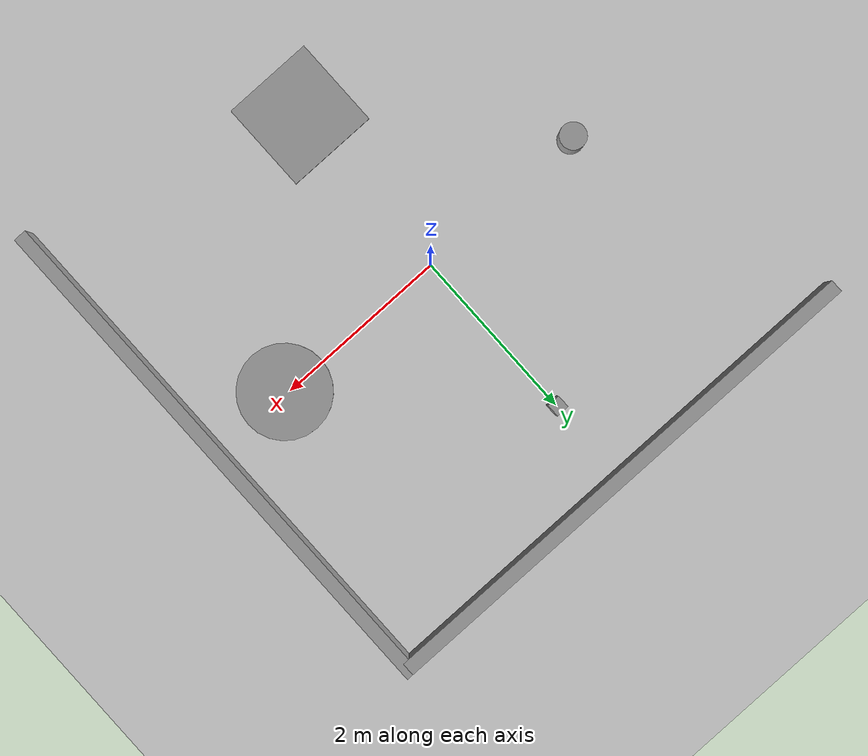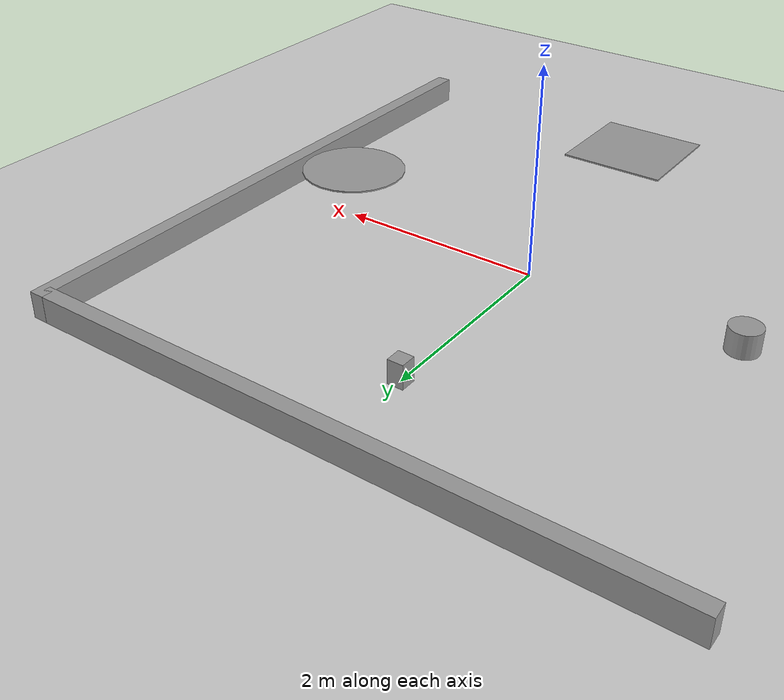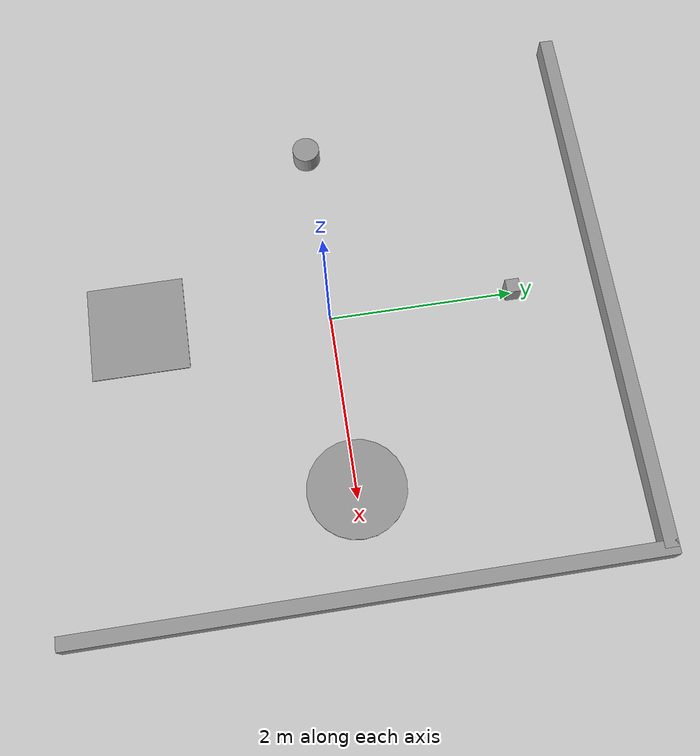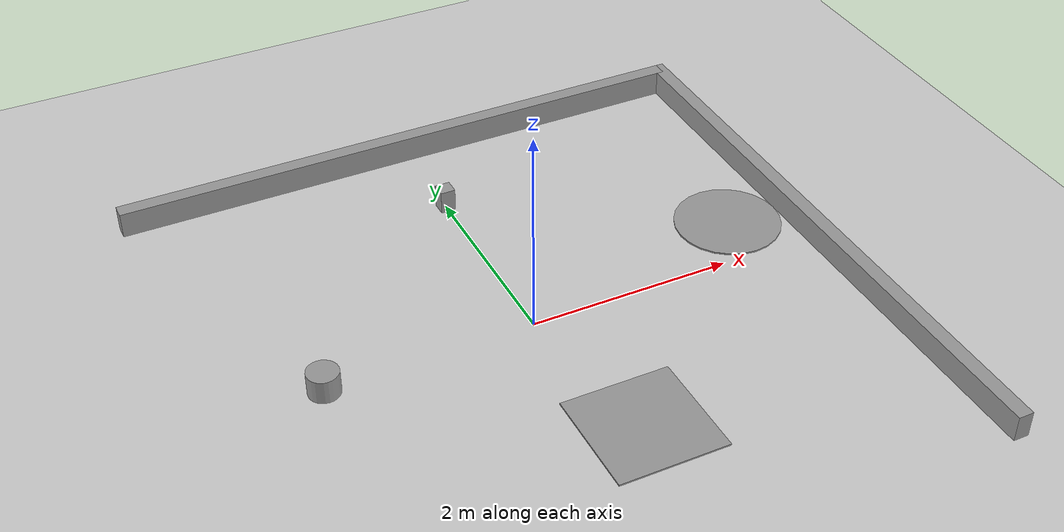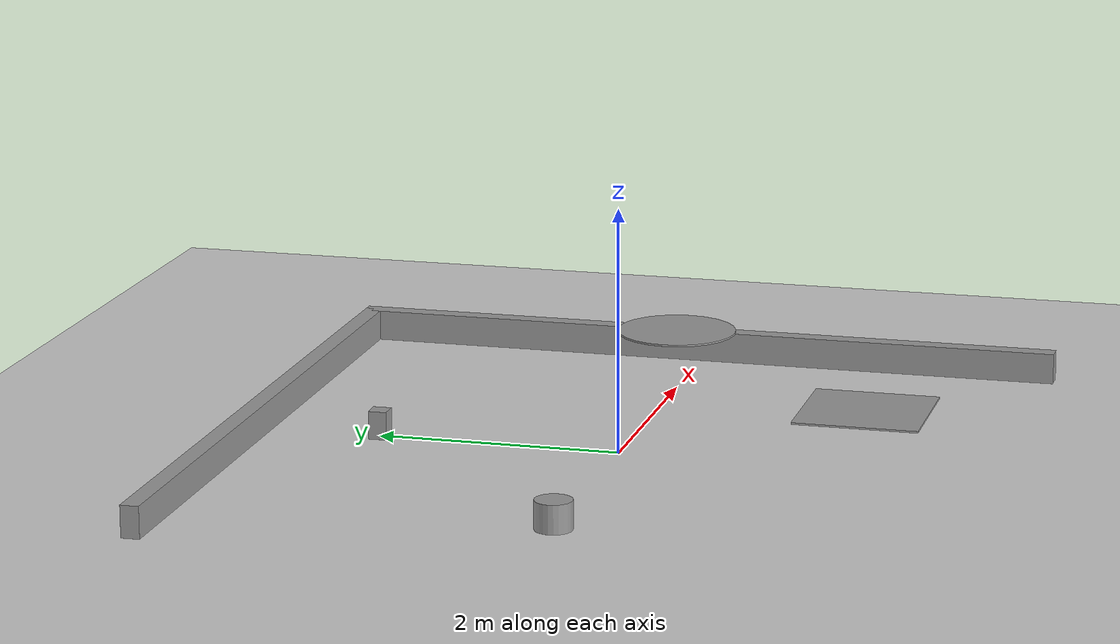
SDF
<sdf version='1.6'>
  <world name='default'>
    <light name='sun' type='directional'>
      <cast_shadows>1</cast_shadows>
      <pose frame=''>0 0 10 0 -0 0</pose>
      <diffuse>0.8 0.8 0.8 1</diffuse>
      <specular>0.2 0.2 0.2 1</specular>
      <attenuation>
        <range>1000</range>
        <constant>0.9</constant>
        <linear>0.01</linear>
        <quadratic>0.001</quadratic>
      </attenuation>
      <direction>-0.5 0.1 -0.9</direction>
    </light>
    <model name='ground_plane'>
      <static>1</static>
      <link name='link'>
        <collision name='collision'>
          <geometry>
            <plane>
              <normal>0 0 1</normal>
              <size>100 100</size>
            </plane>
          </geometry>
          <surface>
            <contact>
              <collide_bitmask>65535</collide_bitmask>
              <ode/>
            </contact>
            <friction>
              <ode>
                <mu>100</mu>
                <mu2>50</mu2>
              </ode>
              <torsional>
                <ode/>
              </torsional>
            </friction>
            <bounce/>
          </surface>
          <max_contacts>10</max_contacts>
        </collision>
        <visual name='visual'>
          <cast_shadows>0</cast_shadows>
          <geometry>
            <plane>
              <normal>0 0 1</normal>
              <size>100 100</size>
            </plane>
          </geometry>
          <material>
            <script>
              <uri>file://media/materials/scripts/gazebo.material</uri>
              <name>Gazebo/Grey</name>
            </script>
          </material>
        </visual>
        <self_collide>0</self_collide>
        <enable_wind>0</enable_wind>
        <kinematic>0</kinematic>
      </link>
    </model>
    <gravity>0 0 -9.8</gravity>
    <magnetic_field>6e-06 2.3e-05 -4.2e-05</magnetic_field>
    <atmosphere type='adiabatic'/>
    <physics name='default_physics' default='0' type='ode'>
      <max_step_size>0.001</max_step_size>
      <real_time_factor>1</real_time_factor>
      <real_time_update_rate>1000</real_time_update_rate>
    </physics>
    <scene>
      <ambient>0.4 0.4 0.4 1</ambient>
      <background>0.7 0.7 0.7 1</background>
      <shadows>1</shadows>
    </scene>
    <audio>
      <device>default</device>
    </audio>
    <wind/>
    <spherical_coordinates>
      <surface_model>EARTH_WGS84</surface_model>
      <latitude_deg>0</latitude_deg>
      <longitude_deg>0</longitude_deg>
      <elevation>0</elevation>
      <heading_deg>0</heading_deg>
    </spherical_coordinates>
    <model name='unit_box1'>
      <pose frame=''>0.0 -2.0 0.5 0 -0 0</pose>
      <link name='link'>
        <inertial>
          <mass>1</mass>
          <inertia>
            <ixx>0.166667</ixx>
            <ixy>0</ixy>
            <ixz>0</ixz>
            <iyy>0.166667</iyy>
            <iyz>0</iyz>
            <izz>0.166667</izz>
          </inertia>
        </inertial>
        <collision name='collision'>
          <geometry>
            <box>
              <size>1 1 0.015</size>
            </box>
          </geometry>
          <max_contacts>10</max_contacts>
          <surface>
            <contact>
              <ode/>
            </contact>
            <bounce/>
            <friction>
              <torsional>
                <ode/>
              </torsional>
              <ode/>
            </friction>
          </surface>
        </collision>
        <visual name='visual'>
          <geometry>
            <box>
              <size>1 1 0.015</size>
            </box>
          </geometry>
          <material>
            <script>
              <name>Gazebo/Grey</name>
              <uri>file://media/materials/scripts/gazebo.material</uri>
            </script>
          </material>
        </visual>
        <self_collide>0</self_collide>
        <enable_wind>0</enable_wind>
        <kinematic>0</kinematic>
      </link>
    </model>
    <model name='unit_box2'>
      <pose frame=''>0.0 2.0 0.075 0 -0 0</pose>
      <link name='link'>
        <inertial>
          <mass>1</mass>
          <inertia>
            <ixx>0.166667</ixx>
            <ixy>0</ixy>
            <ixz>0</ixz>
            <iyy>0.166667</iyy>
            <iyz>0</iyz>
            <izz>0.166667</izz>
          </inertia>
        </inertial>
        <collision name='collision'>
          <geometry>
            <box>
              <size>0.15 0.15 0.3</size>
            </box>
          </geometry>
          <max_contacts>10</max_contacts>
          <surface>
            <contact>
              <ode/>
            </contact>
            <bounce/>
            <friction>
              <torsional>
                <ode/>
              </torsional>
              <ode/>
            </friction>
          </surface>
        </collision>
        <visual name='visual'>
          <geometry>
            <box>
              <size>0.15 0.15 0.3</size>
            </box>
          </geometry>
          <material>
            <script>
              <name>Gazebo/Grey</name>
              <uri>file://media/materials/scripts/gazebo.material</uri>
            </script>
          </material>
        </visual>
        <self_collide>0</self_collide>
        <enable_wind>0</enable_wind>
        <kinematic>0</kinematic>
      </link>
    </model>
    <model name='unit_box3'>
      <pose frame=''>0.0 3.0 0.0 0 -0 0</pose>
      <link name='link'>
        <inertial>
          <mass>1</mass>
          <inertia>
            <ixx>0</ixx>
            <ixy>0</ixy>
            <ixz>0</ixz>
            <iyy>0</iyy>
            <iyz>0</iyz>
            <izz>0</izz>
          </inertia>
        </inertial>
        <collision name='collision'>
          <geometry>
            <box>
              <size>6 0.15 0.5</size>
            </box>
          </geometry>
          <max_contacts>10</max_contacts>
          <surface>
            <contact>
              <ode/>
            </contact>
            <bounce/>
            <friction>
              <torsional>
                <ode/>
              </torsional>
              <ode/>
            </friction>
          </surface>
        </collision>
        <visual name='visual'>
          <geometry>
            <box>
              <size>6 0.15 0.5</size>
            </box>
          </geometry>
          <material>
            <script>
              <name>Gazebo/Grey</name>
              <uri>file://media/materials/scripts/gazebo.material</uri>
            </script>
          </material>
        </visual>
        <self_collide>0</self_collide>
        <enable_wind>0</enable_wind>
        <kinematic>0</kinematic>
      </link>
    </model>
    <model name='unit_box4'>
      <pose frame=''>3.0 0.0 0.0 0 -0 0</pose>
      <link name='link'>
        <inertial>
          <mass>1</mass>
          <inertia>
            <ixx>0</ixx>
            <ixy>0</ixy>
            <ixz>0</ixz>
            <iyy>0</iyy>
            <iyz>0</iyz>
            <izz>0</izz>
          </inertia>
        </inertial>
        <collision name='collision'>
          <geometry>
            <box>
              <size>0.15 6.15 0.5</size>
            </box>
          </geometry>
          <max_contacts>10</max_contacts>
          <surface>
            <contact>
              <ode/>
            </contact>
            <bounce/>
            <friction>
              <torsional>
                <ode/>
              </torsional>
              <ode/>
            </friction>
          </surface>
        </collision>
        <visual name='visual'>
          <geometry>
            <box>
              <size>0.15 6.15 0.5</size>
            </box>
          </geometry>
          <material>
            <script>
              <name>Gazebo/Grey</name>
              <uri>file://media/materials/scripts/gazebo.material</uri>
            </script>
          </material>
        </visual>
        <self_collide>0</self_collide>
        <enable_wind>0</enable_wind>
        <kinematic>0</kinematic>
      </link>
    </model>
    <model name='unit_cylinder1'>
      <pose frame=''>2 0.0 0.5 0 -0 0</pose>
      <link name='link'>
        <inertial>
          <mass>1</mass>
          <inertia>
            <ixx>0.145833</ixx>
            <ixy>0</ixy>
            <ixz>0</ixz>
            <iyy>0.145833</iyy>
            <iyz>0</iyz>
            <izz>0.125</izz>
          </inertia>
        </inertial>
        <collision name='collision'>
          <geometry>
            <cylinder>
              <radius>0.5</radius>
              <length>0.015</length>
            </cylinder>
          </geometry>
          <max_contacts>10</max_contacts>
          <surface>
            <contact>
              <ode/>
            </contact>
            <bounce/>
            <friction>
              <torsional>
                <ode/>
              </torsional>
              <ode/>
            </friction>
          </surface>
        </collision>
        <visual name='visual'>
          <geometry>
            <cylinder>
              <radius>0.5</radius>
              <length>0.015</length>
            </cylinder>
          </geometry>
          <material>
            <script>
              <name>Gazebo/Grey</name>
              <uri>file://media/materials/scripts/gazebo.material</uri>
            </script>
          </material>
        </visual>
        <self_collide>0</self_collide>
        <enable_wind>0</enable_wind>
        <kinematic>0</kinematic>
      </link>
    </model>
    <model name='unit_cylinder2'>
      <pose frame=''>-2.0 0.0 0.075 0 -0 0</pose>
      <link name='link'>
        <inertial>
          <mass>1</mass>
          <inertia>
            <ixx>0.145833</ixx>
            <ixy>0</ixy>
            <ixz>0</ixz>
            <iyy>0.145833</iyy>
            <iyz>0</iyz>
            <izz>0.125</izz>
          </inertia>
        </inertial>
        <collision name='collision'>
          <geometry>
            <cylinder>
              <radius>0.15</radius>
              <length>0.3</length>
            </cylinder>
          </geometry>
          <max_contacts>10</max_contacts>
          <surface>
            <contact>
              <ode/>
            </contact>
            <bounce/>
            <friction>
              <torsional>
                <ode/>
              </torsional>
              <ode/>
            </friction>
          </surface>
        </collision>
        <visual name='visual'>
          <geometry>
            <cylinder>
              <radius>0.15</radius>
              <length>0.3</length>
            </cylinder>
          </geometry>
          <material>
            <script>
              <name>Gazebo/Grey</name>
              <uri>file://media/materials/scripts/gazebo.material</uri>
            </script>
          </material>
        </visual>
        <self_collide>0</self_collide>
        <enable_wind>0</enable_wind>
        <kinematic>0</kinematic>
      </link>
    </model>
    <gui fullscreen='0'>
      <camera name='user_camera'>
        <pose frame=''>5 -5 2 0 0.275643 2.35619</pose>
        <view_controller>orbit</view_controller>
        <projection_type>perspective</projection_type>
      </camera>
    </gui>
  </world>
</sdf>
